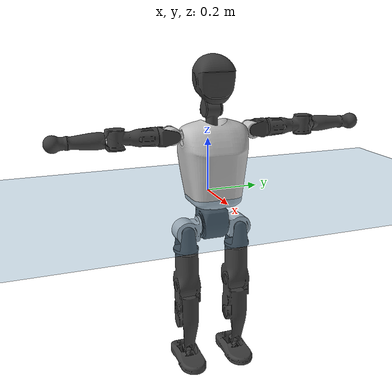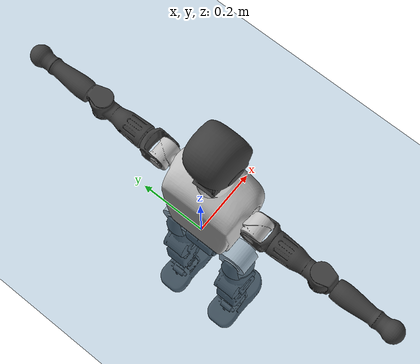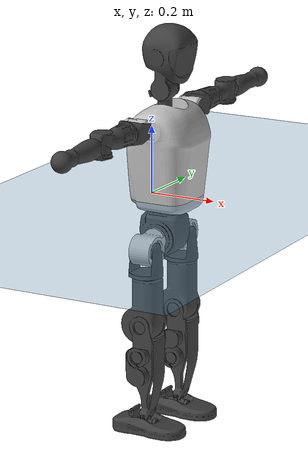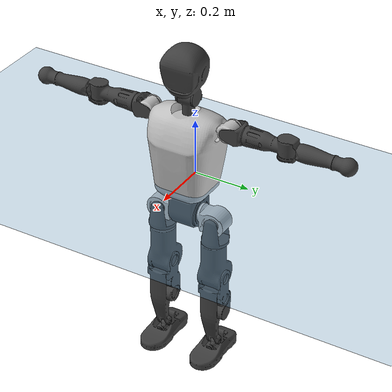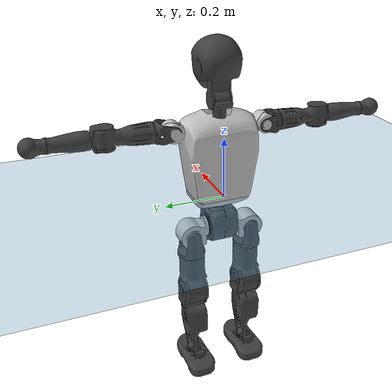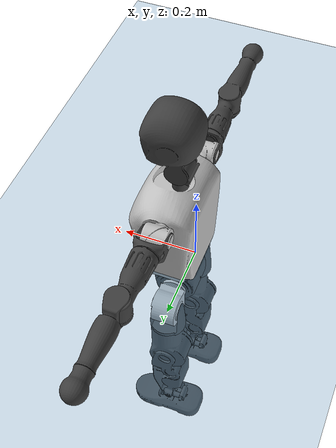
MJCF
<mujoco model="T1">
  <compiler angle="radian" assetdir="assets" balanceinertia="true" inertiafromgeom="false"/>

  <option timestep="0.005" density="1.2" viscosity="2e-05"/>

  <size nkey="1"/>

  <visual>
    <quality shadowsize="8192"/>
    <map shadowclip="0.5"/>
  </visual>

  <default>
    <default class="/">
      <joint armature="0.01" damping="0.01" frictionloss="0.1"/>
      <geom contype="0" conaffinity="0" group="1" solref="-1000 -80"/>
      <site size="0.01 0.005 0.005" group="5"/>
      <general forcelimited="true" biastype="affine" gainprm="25" biasprm="0 -25 -0.6"/>
      <default class="t1">
        <geom rgba="0.25 0.25 0.25 1"/>
        <default class="visual">
          <geom type="mesh" group="2"/>
        </default>
        <default class="collision">
          <geom group="3"/>
        </default>
        <default class="foot">
          <geom size="0.1115 0.05 0.015" type="box" condim="6" group="4" priority="1" solimp="0.015 1 0.015"/>
        </default>
        <default class="reward_collision_sphere">
          <geom group="5" rgba="1 0 0 1"/>
        </default>
      </default>
    </default>
  </default>

  <asset>
    <texture type="skybox" colorspace="auto" name="//unnamed_texture_0" builtin="gradient" rgb1="0.95 0.95 0.95" rgb2="0.95 0.95 0.95" width="100" height="600"/>
    <texture type="2d" colorspace="auto" name="texplane" builtin="checker" rgb1="0.345 0.575 0.748" rgb2="0.345 0.575 0.748" markrgb="1 1 1" width="512" height="512"/>
    <material name="MatPlane" class="/" texture="texplane" texuniform="true" texrepeat="2 2" specular="0.9"/>
    <mesh name="Trunk" class="/" file="Trunk.stl"/>
    <mesh name="H1" class="/" file="H1.stl"/>
    <mesh name="H2" class="/" file="H2.stl"/>
    <mesh name="AL1" class="/" file="AL1.stl"/>
    <mesh name="AL2" class="/" file="AL2.stl"/>
    <mesh name="AL3" class="/" file="AL3.stl"/>
    <mesh name="left_hand_link" class="/" file="left_hand_link.stl"/>
    <mesh name="AR1" class="/" file="AR1.stl"/>
    <mesh name="AR2" class="/" file="AR2.stl"/>
    <mesh name="AR3" class="/" file="AR3.stl"/>
    <mesh name="right_hand_link" class="/" file="right_hand_link.stl"/>
    <mesh name="Waist" class="/" file="Waist.stl"/>
    <mesh name="Hip_Pitch_Left" class="/" file="Hip_Pitch_Left.stl"/>
    <mesh name="Hip_Roll_Left" class="/" file="Hip_Roll_Left.stl"/>
    <mesh name="Hip_Yaw_Left" class="/" file="Hip_Yaw_Left.stl"/>
    <mesh name="Shank_Left" class="/" file="Shank_Left.stl"/>
    <mesh name="Ankle_Cross_Left" class="/" file="Ankle_Cross_Left.stl"/>
    <mesh name="left_foot_link" class="/" file="left_foot_link.stl"/>
    <mesh name="Hip_Pitch_Right" class="/" file="Hip_Pitch_Right.stl"/>
    <mesh name="Hip_Roll_Right" class="/" file="Hip_Roll_Right.stl"/>
    <mesh name="Hip_Yaw_Right" class="/" file="Hip_Yaw_Right.stl"/>
    <mesh name="Shank_Right" class="/" file="Shank_Right.stl"/>
    <mesh name="Ankle_Cross_Right" class="/" file="Ankle_Cross_Right.stl"/>
    <mesh name="right_foot_link" class="/" file="right_foot_link.stl"/>
  </asset>

  <worldbody>
    <geom name="floor" class="/" size="100 100 0.125" type="plane" group="0" material="MatPlane"/>
    <light name="toplight_shadow" class="/" pos="0 0 5" dir="0.0990148 0.0990148 -0.990148" type="directional" ambient="0.04 0.04 0.04" diffuse="0.55 0.55 0.55" specular="0.12 0.12 0.12"/>
    <light name="toplight_fill" class="/" pos="0 0 5" dir="0.0990148 0.0990148 -0.990148" type="directional" castshadow="false" ambient="0.04 0.04 0.04" diffuse="0.3 0.3 0.3" specular="0.08 0.08 0.08"/>
    <body name="trunk" childclass="t1" pos="0.00277784 0.000508776 0.000500034" quat="1 0.000171407 1.1034e-05 7.09955e-06">
      <inertial pos="0.0351943 -0.00107905 0.106233" quat="0.999951 0.00572045 -0.00453385 0.00666676" mass="8.34139" diaginertia="0.0101203 0.0705849 0.0659064"/>
      <joint name="//unnamed_joint_0" type="free" armature="0" damping="0" frictionloss="0"/>
      <geom name="//unnamed_geom_1" class="visual" rgba="0.76 0.76 0.76 1" mesh="Trunk"/>
      <geom name="//unnamed_geom_2" class="collision" size="0.06651 0.08868 0.13302" pos="0.0384308 0 0.124362" type="box"/>
      <geom name="//unnamed_geom_3" class="reward_collision_sphere" size="0.101982" pos="0.0384308 0 0.103635"/>
      <geom name="//unnamed_geom_4" class="reward_collision_sphere" size="0.013302" pos="0.0384308 0.0836008 0"/>
      <geom name="//unnamed_geom_5" class="reward_collision_sphere" size="0.013302" pos="0.0384308 -0.0836008 0"/>
      <geom name="//unnamed_geom_6" class="reward_collision_sphere" size="0.013302" pos="0.0384308 0.105239 0.186542"/>
      <geom name="//unnamed_geom_7" class="reward_collision_sphere" size="0.013302" pos="0.0384308 -0.105239 0.186542"/>
      <site name="imu" pos="-0.00590833 -0.0126277 0.0130036" size="0.008868"/>
      <camera name="track" pos="0 -1.96708 0" quat="0.707107 0.707107 0 0" mode="trackcom"/>
      <camera name="ego_camera" pos="0.0781427 0 0.435265" quat="-0.5 -0.5 0.5 0.5"/>
      <body name="H1" pos="0.0396257 -0.00114125 0.251374" quat="1 0.000632152 0.000226597 -0.000253884">
        <inertial pos="-0.00355243 -0.000792081 0.0567278" quat="0.7632 -0.0183198 0.00304644 0.645896" mass="0.32085" diaginertia="2.59207e-05 0.000205422 0.000181221"/>
        <joint name="AAHead_yaw" pos="0 0 0" axis="0.00340926 0.00657957 0.999973" stiffness="0.00214433" range="-1.55359 1.60742" armature="0.00954314" damping="0.0131173" frictionloss="0.101149"/>
        <geom name="//unnamed_geom_8" class="visual" mesh="H1"/>
        <body name="H2" pos="0.000901404 0.000447378 0.0644924" quat="0.999999 0.00106213 0.000227744 0.000375422">
          <inertial pos="0.00421245 0.000509495 0.102562" quat="0.988125 0.108064 -0.0772269 -0.0772418" mass="0.443828" diaginertia="0.000208845 0.00173019 0.00209121"/>
          <joint name="Head_pitch" pos="0 0 0" axis="0.000679729 -0.999999 0.000850133" range="-1.19475 0.34705" armature="0.00997197" damping="0.00706207" frictionloss="0.0896543"/>
          <geom name="//unnamed_geom_9" class="visual" mesh="H2"/>
          <geom name="//unnamed_geom_10" class="collision" size="0.070944" pos="0.00640514 0 0.113998"/>
          <geom name="//unnamed_geom_11" class="reward_collision_sphere" size="0.079812" pos="0.0128103 0 0.103635"/>
        </body>
      </body>
      <body name="AL1" pos="0.0408257 0.106139 0.230156" quat="1 -0.000237114 0.000324896 -4.33959e-05">
        <inertial pos="-0.00108055 0.0454184 -0.00238395" quat="0.507542 0.491077 -0.506102 0.49508" mass="0.395772" diaginertia="0.000157969 0.00127586 0.000365413"/>
        <joint name="Left_Shoulder_Pitch" pos="0 0 0" axis="-0.0107835 0.999905 0.00854162" stiffness="0.0116862" range="-3.25403 1.23186" armature="0.0100259" damping="0.0154864" frictionloss="0.0765803"/>
        <geom name="//unnamed_geom_12" class="visual" rgba="0.76 0.76 0.76 1" mesh="AL1"/>
        <body name="AL2" pos="0.0014346 0.0485662 0.00308844" quat="0.999999 -0.00132202 0.000154468 0.000240149">
          <inertial pos="0.00137931 0.0360063 0.00271871" quat="0.487652 0.511686 -0.488413 0.511689" mass="0.110041" diaginertia="4.52762e-05 0.000325432 0.000207136"/>
          <joint name="Left_Shoulder_Roll" pos="0 0 0" axis="-0.999966 -0.00804746 -0.00156976" range="-1.51706 1.70197" armature="0.00884051" damping="0.00926096" frictionloss="0.0913508"/>
          <geom name="//unnamed_geom_13" class="visual" mesh="AL2"/>
          <body name="AL3" pos="0.00147696 0.0605504 0.00155623" quat="0.999999 0.000901501 -0.00114743 -0.000531816">
            <inertial pos="-0.00115159 0.0848468 0.00228486" quat="0.706562 0.707556 -0.00534789 0.010335" mass="0.723823" diaginertia="0.00145128 0.0120103 0.000755021"/>
            <joint name="Left_Elbow_Pitch" pos="0 0 0" axis="-0.000798287 -0.999997 -0.00229588" range="-2.25544 2.31051" armature="0.00798162" damping="0" frictionloss="0.0916554"/>
            <geom name="//unnamed_geom_14" class="visual" mesh="AL3"/>
            <geom name="//unnamed_geom_15" class="collision" size="0.026604 0.06651" pos="0 0.049177 0" quat="0.707105 0.707108 0 0" type="cylinder"/>
            <geom name="//unnamed_geom_16" class="reward_collision_sphere" size="0.0319248"/>
            <body name="left_hand_link" pos="0.00330404 0.144553 0.00162298" quat="0.999999 0.00010688 -0.000943614 0.000804323">
              <inertial pos="0.000102071 0.10579 0.000596516" quat="0.710034 0.704085 -0.00484134 -0.0096017" mass="0.221985" diaginertia="0.000897439 0.00755706 0.000254"/>
              <joint name="Left_Elbow_Yaw" pos="0 0 0" axis="-0.00949216 -0.00430908 0.999946" stiffness="0.00870062" range="-2.38555 -0.0569622" armature="0.0100525" damping="0.024819" frictionloss="0.0991871"/>
              <geom name="//unnamed_geom_17" class="visual" mesh="left_hand_link"/>
              <geom name="//unnamed_geom_18" class="collision" size="0.026604 0.077595" pos="0 0.12786 0" quat="0.707105 0.707108 0 0" type="cylinder"/>
              <geom name="//unnamed_geom_19" class="reward_collision_sphere" size="0.04434"/>
              <geom name="//unnamed_geom_20" class="reward_collision_sphere" size="0.031038" pos="0 0.108189 0"/>
              <geom name="//unnamed_geom_21" class="reward_collision_sphere" size="0.031038" pos="0 0.211461 0"/>
            </body>
          </body>
        </body>
      </body>
      <body name="AR1" pos="0.0344704 -0.105656 0.22596" quat="0.999999 0.000338928 0.000921602 0.00131606">
        <inertial pos="0.0018507 -0.0427828 -0.000288254" quat="0.504686 0.495229 -0.504663 0.495334" mass="0.371303" diaginertia="0.000142628 0.00117726 0.000351924"/>
        <joint name="Right_Shoulder_Pitch" pos="0 0 0" axis="0.00158203 -0.999997 0.00181247" stiffness="0.0121066" range="-1.24817 3.34498" armature="0.00995059" damping="0.00561885" frictionloss="0.0760883"/>
        <geom name="//unnamed_geom_22" class="visual" rgba="0.76 0.76 0.76 1" mesh="AR1"/>
        <body name="AR2" pos="-0.00182679 -0.0424543 -0.00169498" quat="1 0.000275654 -5.70398e-06 4.57472e-05">
          <inertial pos="-0.000541204 -0.0349062 -0.000959712" quat="0.509447 0.488747 -0.514938 0.48624" mass="0.114922" diaginertia="4.48113e-05 0.000325099 0.000225188"/>
          <joint name="Right_Shoulder_Roll" pos="0 0 0" axis="-0.999735 0.00913535 -0.0211524" range="-1.72793 1.57534" armature="0.0099082" damping="0.0130728" frictionloss="0.0930788"/>
          <geom name="//unnamed_geom_23" class="visual" mesh="AR2"/>
          <body name="AR3" pos="-0.000602569 -0.0569866 0.0014769" quat="1 -7.41066e-07 -0.000360514 -0.0002972">
            <inertial pos="-0.00155305 -0.0819484 0.000459548" quat="0.698974 0.715116 -0.0023278 0.00616804" mass="0.716673" diaginertia="0.00139014 0.0118005 0.000756981"/>
            <joint name="Right_Elbow_Pitch" pos="0 0 0" axis="-0.0124817 0.999909 -0.00512725" range="-2.27752 2.21131" armature="0.00873927" damping="0.000626508" frictionloss="0.0829788"/>
            <geom name="//unnamed_geom_24" class="visual" mesh="AR3"/>
            <geom name="//unnamed_geom_25" class="collision" size="0.026604 0.06651" pos="0 -0.049177 0" quat="0.707105 0.707108 0 0" type="cylinder"/>
            <geom name="//unnamed_geom_26" class="reward_collision_sphere" size="0.0319248"/>
            <body name="right_hand_link" pos="0.00192819 -0.141724 -0.000268661" quat="1 -0.000425772 4.31452e-07 8.46182e-05">
              <inertial pos="-0.00186376 -0.107969 0.0026177" quat="0.706149 0.708063 -7.1878e-05 0.000441986" mass="0.229973" diaginertia="0.000891745 0.0073479 0.000249419"/>
              <joint name="Right_Elbow_Yaw" pos="0 0 0" axis="0.00477767 -0.00120676 0.999988" stiffness="0.0104944" range="0.0584891 2.39656" armature="0.00895225" damping="0" frictionloss="0.0815972"/>
              <geom name="//unnamed_geom_27" class="visual" mesh="right_hand_link"/>
              <geom name="//unnamed_geom_28" class="collision" size="0.026604 0.077595" pos="0 -0.12786 0" quat="0.707105 0.707108 0 0" type="cylinder"/>
              <geom name="//unnamed_geom_29" class="reward_collision_sphere" size="0.04434"/>
              <geom name="//unnamed_geom_30" class="reward_collision_sphere" size="0.031038" pos="0 -0.108189 0"/>
              <geom name="//unnamed_geom_31" class="reward_collision_sphere" size="0.031038" pos="0 -0.211461 0"/>
            </body>
          </body>
        </body>
      </body>
      <body name="Waist" pos="0.0390393 -0.000878418 -0.117827" quat="1 0.000107345 7.83109e-05 -2.71549e-05">
        <inertial pos="0.00132338 -0.000473075 0.00845322" quat="0.982548 -0.0100634 -0.185668 -0.00501563" mass="1.7456" diaginertia="0.000583082 0.0049422 0.00570732"/>
        <joint name="Waist" pos="0 0 0" axis="-0.000901627 -0.0139219 0.999903" range="-1.6253 1.51189" armature="0.00893256" damping="0.0214363" frictionloss="0.0814675"/>
        <geom name="//unnamed_geom_32" class="visual" mesh="Waist"/>
        <body name="Hip_Pitch_Left" pos="-0.00117755 0.104693 -0.00208539" quat="1 0.00020865 0.000518962 0.000405317">
          <inertial pos="0.00119538 -0.00972834 -0.0170206" quat="0.975881 0.2178 0.0101275 -0.0108301" mass="0.725723" diaginertia="0.000190128 0.00140016 0.00154399"/>
          <joint name="Left_Hip_Pitch" pos="0 0 0" axis="-0.00705178 0.999878 0.0139366" stiffness="0.0131618" range="-1.8388 1.568" armature="0.00993433" damping="0.0188898" frictionloss="0.0898775"/>
          <geom name="//unnamed_geom_33" class="visual" rgba="0.76 0.76 0.76 1" mesh="Hip_Pitch_Left"/>
          <body name="Hip_Roll_Left" pos="0.00163087 -0.00102818 -0.0216567" quat="1 -0.0004144 0.000355461 0.000765603">
            <inertial pos="0.00409223 -0.00132665 -0.0559972" quat="0.707959 -0.00369095 -0.0099233 0.706174" mass="0.257966" diaginertia="0.00018479 0.00138732 0.000609621"/>
            <joint name="Left_Hip_Roll" pos="0 0 0" axis="-0.999952 -0.00486566 0.00854985" stiffness="0.00908195" range="-1.54381 0.219265" armature="0.00757905" damping="0" frictionloss="0.0779476"/>
            <geom name="//unnamed_geom_34" class="visual" mesh="Hip_Roll_Left"/>
            <geom name="//unnamed_geom_35" class="reward_collision_sphere" size="0.048774"/>
            <body name="Hip_Yaw_Left" pos="0.00341361 -0.00348896 -0.0825998" quat="1 -0.000173587 -0.000320162 0.000775145">
              <inertial pos="-0.00544118 -0.0024625 -0.0945661" quat="0.6969 -0.0293943 -0.0356187 0.71568" mass="1.52543" diaginertia="0.00281168 0.0229945 0.00305402"/>
              <joint name="Left_Hip_Yaw" pos="0 0 0" axis="0.00921971 0.00486409 -0.999946" stiffness="0.000587751" range="-0.987921 1.04547" armature="0.00906329" damping="0.00926229" frictionloss="0.0985352"/>
              <geom name="//unnamed_geom_36" class="visual" mesh="Hip_Yaw_Left"/>
              <geom name="//unnamed_geom_37" class="collision" size="0.04434 0.070944" type="cylinder"/>
              <body name="Shank_Left" pos="-0.00769869 0.00155688 -0.141795" quat="1 0.000107334 -1.9573e-06 -6.34346e-05">
                <inertial pos="-0.00466188 0.00184943 -0.127007" quat="0.997501 -0.00192426 -0.0246634 0.0661739" mass="1.15194" diaginertia="0.00369275 0.0315404 0.00227446"/>
                <joint name="Left_Knee_Pitch" pos="0 0 0" axis="-0.0100631 0.999944 -0.00323252" range="-0.00759967 2.39178" armature="0.00770049" damping="0.0162017" frictionloss="0.0937146"/>
                <geom name="//unnamed_geom_38" class="visual" mesh="Shank_Left"/>
                <geom name="//unnamed_geom_39" class="collision" size="0.04434 0.06651" pos="0 0 -0.124362" type="cylinder"/>
                <geom name="//unnamed_geom_40" class="reward_collision_sphere" size="0.057642"/>
                <body name="Ankle_Cross_Left" pos="-0.00247463 -0.00199965 -0.288132" quat="1 5.8827e-05 -0.000151521 -0.000311498">
                  <inertial pos="-0.00194703 0.000668372 -0.00761393" quat="0.444134 0.550219 0.549076 0.445555" mass="0.0526468" diaginertia="3.34497e-06 2.45938e-05 1.41451e-05"/>
                  <joint name="Left_Ankle_Pitch" pos="0 0 0" axis="-0.00286768 0.999937 -0.0108302" range="-0.877448 0.294898" armature="0.00924582" damping="0" frictionloss="0.0769604"/>
                  <geom name="//unnamed_geom_41" class="visual" mesh="Ankle_Cross_Left"/>
                  <body name="left_foot_link" pos="0.000735531 -0.00163916 -0.0154808" quat="1 0.000153583 -0.000139614 -8.92487e-05">
                    <inertial pos="-0.00113889 0.00265813 -0.00959244" quat="-0.000948399 0.620642 -0.000511966 0.784093" mass="0.47091" diaginertia="0.00029167 0.00220755 0.00252588"/>
                    <joint name="Left_Ankle_Roll" pos="0 0 0" axis="-0.999999 -0.000933771 0.000995903" range="-0.382175 0.387055" armature="0.00894348" damping="0.0114346" frictionloss="0.0892879"/>
                    <geom name="//unnamed_geom_42" class="visual" mesh="left_foot_link"/>
                    <geom name="left_foot" class="foot" size="0.0971627 0.0454944 0.0121169" pos="0.00640514 0 -0.0155452"/>
                    <geom name="//unnamed_geom_44" class="reward_collision_sphere" size="0.0461136" pos="0.00640514 0 -0.0155452"/>
                    <geom name="//unnamed_geom_45" class="reward_collision_sphere" size="0.026604" pos="0.0608488 -0.0226214 -0.0155452"/>
                    <geom name="//unnamed_geom_46" class="reward_collision_sphere" size="0.026604" pos="-0.044836 -0.0226214 -0.0155452"/>
                    <site name="left_foot" class="foot" pos="0.00640514 0 -0.0155452" size="0.008868"/>
                  </body>
                </body>
              </body>
            </body>
          </body>
        </body>
        <body name="Hip_Pitch_Right" pos="-0.00246235 -0.104832 -0.00271832" quat="1 0.000486854 -0.000598083 0.000625834">
          <inertial pos="0.000558023 0.00786797 -0.020744" quat="0.975255 -0.220701 0.0120967 -0.00481687" mass="0.708074" diaginertia="0.000192443 0.00137234 0.00154497"/>
          <joint name="Right_Hip_Pitch" pos="0 0 0" axis="0.0113099 -0.999928 -0.00399808" range="-1.57081 1.82038" armature="0.00833719" damping="0.019098" frictionloss="0.0828389"/>
          <geom name="//unnamed_geom_47" class="visual" rgba="0.76 0.76 0.76 1" mesh="Hip_Pitch_Right"/>
          <body name="Hip_Roll_Right" pos="0.000894638 -0.000249276 -0.0189014" quat="1 0.000347538 -0.000272442 -0.000427819">
            <inertial pos="-0.000452746 -0.002965 -0.0533535" quat="0.710522 -0.00676414 0.0010023 0.703642" mass="0.25998" diaginertia="0.000181242 0.00131437 0.000608917"/>
            <joint name="Right_Hip_Roll" pos="0 0 0" axis="-0.999984 0.00501714 0.0026248" range="-0.19452 1.54808" armature="0.00748138" damping="0.0091366" frictionloss="0.0911628"/>
            <geom name="//unnamed_geom_48" class="visual" mesh="Hip_Roll_Right"/>
            <geom name="//unnamed_geom_49" class="reward_collision_sphere" size="0.048774"/>
            <body name="Hip_Yaw_Right" pos="0.00123827 0.0024199 -0.0871811" quat="1 -6.3182e-05 4.83793e-05 0.000579369">
              <inertial pos="-0.00150482 0.00103939 -0.0954718" quat="0.715008 -0.0329511 -0.0334179 0.697539" mass="1.51388" diaginertia="0.00278531 0.0225329 0.00301472"/>
              <joint name="Right_Hip_Yaw" pos="0 0 0" axis="0.000835662 0.000721385 -0.999999" range="-1.03917 1.0333" armature="0.00879843" damping="0.00210308" frictionloss="0.0878908"/>
              <geom name="//unnamed_geom_50" class="visual" mesh="Hip_Yaw_Right"/>
              <geom name="//unnamed_geom_51" class="collision" size="0.04434 0.070944" type="cylinder"/>
              <body name="Shank_Right" pos="-0.00544843 -0.000940514 -0.13651" quat="1 6.4789e-06 3.00553e-05 -4.45259e-05">
                <inertial pos="-0.00437555 -0.000543582 -0.129974" quat="0.999411 -0.00886756 -0.0243834 -0.0224652" mass="1.28464" diaginertia="0.00369481 0.0311603 0.00227348"/>
                <joint name="Right_Knee_Pitch" pos="0 0 0" axis="0.0153519 -0.999861 0.00647623" range="-2.3983 -0.0141348" armature="0.00894181" damping="0.0193496" frictionloss="0.0769907"/>
                <geom name="//unnamed_geom_52" class="visual" mesh="Shank_Right"/>
                <geom name="//unnamed_geom_53" class="collision" size="0.04434 0.06651" pos="0 0 -0.124362" type="cylinder"/>
                <geom name="//unnamed_geom_54" class="reward_collision_sphere" size="0.057642"/>
                <body name="Ankle_Cross_Right" pos="0.000300097 -9.74848e-05 -0.289286" quat="1 0.000198661 0.000285017 -5.18841e-05">
                  <inertial pos="-0.00382333 -0.00220877 -0.00677886" quat="0.444488 0.549977 0.547704 0.447188" mass="0.0503906" diaginertia="3.10674e-06 2.2911e-05 1.34118e-05"/>
                  <joint name="Right_Ankle_Pitch" pos="0 0 0" axis="0.0100087 -0.999931 -0.00607005" stiffness="0.00237625" range="-0.293087 0.8696" armature="0.0101164" damping="0.00579942" frictionloss="0.0924874"/>
                  <geom name="//unnamed_geom_55" class="visual" mesh="Ankle_Cross_Right"/>
                  <body name="right_foot_link" pos="0.00237404 -0.000510003 -0.0106267" quat="1 2.45189e-05 4.60798e-05 -7.75917e-05">
                    <inertial pos="-0.00101639 0.00186459 -0.00769958" quat="-0.0116758 0.624377 -0.00650353 0.781008" mass="0.472915" diaginertia="0.000297848 0.00224756 0.00264625"/>
                    <joint name="Right_Ankle_Roll" pos="0 0 0" axis="-0.999995 -0.00175222 0.00258796" range="-0.420641 0.38367" armature="0.0087366" damping="0.0102627" frictionloss="0.076418"/>
                    <geom name="//unnamed_geom_56" class="visual" mesh="right_foot_link"/>
                    <geom name="right_foot" class="foot" size="0.114419 0.0475145 0.0146435" pos="0.00640514 0 -0.0155452"/>
                    <geom name="//unnamed_geom_58" class="reward_collision_sphere" size="0.035472"/>
                    <geom name="//unnamed_geom_59" class="reward_collision_sphere" size="0.026604" pos="0.00640514 0 -0.0155452"/>
                    <geom name="//unnamed_geom_60" class="reward_collision_sphere" size="0.026604" pos="0.0608488 0.0226214 -0.0155452"/>
                    <geom name="//unnamed_geom_61" class="reward_collision_sphere" size="0.026604" pos="-0.044836 0.0226214 -0.0155452"/>
                    <site name="right_foot" class="foot" pos="0.00640514 0 -0.0155452" size="0.008868"/>
                  </body>
                </body>
              </body>
            </body>
          </body>
        </body>
      </body>
    </body>
  </worldbody>

  <contact>
    <pair class="/" geom1="floor" geom2="left_foot" name="//unnamed_contact_0"/>
    <pair class="/" geom1="floor" geom2="right_foot" name="//unnamed_contact_1"/>
  </contact>

  <actuator>
    <general name="AAHead_yaw" class="/" joint="AAHead_yaw" forcerange="-6.8372 6.8372" gainprm="24.0326" biasprm="0 -24.0326 -0.493953"/>
    <general name="Head_pitch" class="/" joint="Head_pitch" forcerange="-6.33568 6.33568" gainprm="24.0326" biasprm="0 -24.0326 -0.493953"/>
    <general name="Left_Shoulder_Pitch" class="/" joint="Left_Shoulder_Pitch" forcerange="-15.3254 15.3254" gainprm="24.0326" biasprm="0 -24.0326 -0.493953"/>
    <general name="Left_Shoulder_Roll" class="/" joint="Left_Shoulder_Roll" forcerange="-16.5076 16.5076" gainprm="24.0326" biasprm="0 -24.0326 -0.493953"/>
    <general name="Left_Elbow_Pitch" class="/" joint="Left_Elbow_Pitch" forcerange="-17.5204 17.5204" gainprm="24.0326" biasprm="0 -24.0326 -0.493953"/>
    <general name="Left_Elbow_Yaw" class="/" joint="Left_Elbow_Yaw" forcerange="-17.7499 17.7499" gainprm="24.0326" biasprm="0 -24.0326 -0.493953"/>
    <general name="Right_Shoulder_Pitch" class="/" joint="Right_Shoulder_Pitch" forcerange="-14.4992 14.4992" gainprm="24.0326" biasprm="0 -24.0326 -0.493953"/>
    <general name="Right_Shoulder_Roll" class="/" joint="Right_Shoulder_Roll" forcerange="-15.3073 15.3073" gainprm="24.0326" biasprm="0 -24.0326 -0.493953"/>
    <general name="Right_Elbow_Pitch" class="/" joint="Right_Elbow_Pitch" forcerange="-16.1861 16.1861" gainprm="24.0326" biasprm="0 -24.0326 -0.493953"/>
    <general name="Right_Elbow_Yaw" class="/" joint="Right_Elbow_Yaw" forcerange="-16.5755 16.5755" gainprm="24.0326" biasprm="0 -24.0326 -0.493953"/>
    <general name="Waist" class="/" joint="Waist" forcerange="-26.5155 26.5155" gainprm="24.0326" biasprm="0 -24.0326 -0.493953"/>
    <general name="Left_Hip_Pitch" class="/" joint="Left_Hip_Pitch" forcerange="-39.5698 39.5698" gainprm="24.0326" biasprm="0 -24.0326 -0.493953"/>
    <general name="Left_Hip_Roll" class="/" joint="Left_Hip_Roll" forcerange="-26.9396 26.9396" gainprm="24.0326" biasprm="0 -24.0326 -0.493953"/>
    <general name="Left_Hip_Yaw" class="/" joint="Left_Hip_Yaw" forcerange="-24.0992 24.0992" gainprm="24.0326" biasprm="0 -24.0326 -0.493953"/>
    <general name="Left_Knee_Pitch" class="/" joint="Left_Knee_Pitch" forcerange="-58.2485 58.2485" gainprm="24.0326" biasprm="0 -24.0326 -0.493953"/>
    <general name="Left_Ankle_Pitch" class="/" joint="Left_Ankle_Pitch" forcerange="-15.8952 15.8952" gainprm="24.0326" biasprm="0 -24.0326 -0.493953"/>
    <general name="Left_Ankle_Roll" class="/" joint="Left_Ankle_Roll" forcerange="-13.8158 13.8158" gainprm="24.0326" biasprm="0 -24.0326 -0.493953"/>
    <general name="Right_Hip_Pitch" class="/" joint="Right_Hip_Pitch" forcerange="-41.4312 41.4312" gainprm="24.0326" biasprm="0 -24.0326 -0.493953"/>
    <general name="Right_Hip_Roll" class="/" joint="Right_Hip_Roll" forcerange="-26.4894 26.4894" gainprm="24.0326" biasprm="0 -24.0326 -0.493953"/>
    <general name="Right_Hip_Yaw" class="/" joint="Right_Hip_Yaw" forcerange="-24.6514 24.6514" gainprm="24.0326" biasprm="0 -24.0326 -0.493953"/>
    <general name="Right_Knee_Pitch" class="/" joint="Right_Knee_Pitch" forcerange="-48.3974 48.3974" gainprm="24.0326" biasprm="0 -24.0326 -0.493953"/>
    <general name="Right_Ankle_Pitch" class="/" joint="Right_Ankle_Pitch" forcerange="-16.5292 16.5292" gainprm="24.0326" biasprm="0 -24.0326 -0.493953"/>
    <general name="Right_Ankle_Roll" class="/" joint="Right_Ankle_Roll" forcerange="-14.2835 14.2835" gainprm="24.0326" biasprm="0 -24.0326 -0.493953"/>
  </actuator>

  <sensor>
    <gyro site="imu" name="imu_angular_velocity"/>
    <velocimeter site="imu" name="imu_linear_velocity"/>
    <framelinvel objtype="site" objname="left_foot" name="left_foot_global_linear_velocity"/>
    <framelinvel objtype="site" objname="right_foot" name="right_foot_global_linear_velocity"/>
  </sensor>

  <keyframe>
    <key name="home" qpos="0 0 0.6385 1 0 0 0 0 0 0 1.4 0 -0.4 0 -1.4 0 0.4 0 -0.4 0 0 0.8 -0.4 0 0.4 0 0 -0.8 0.4 0"/>
  </keyframe>
</mujoco>
